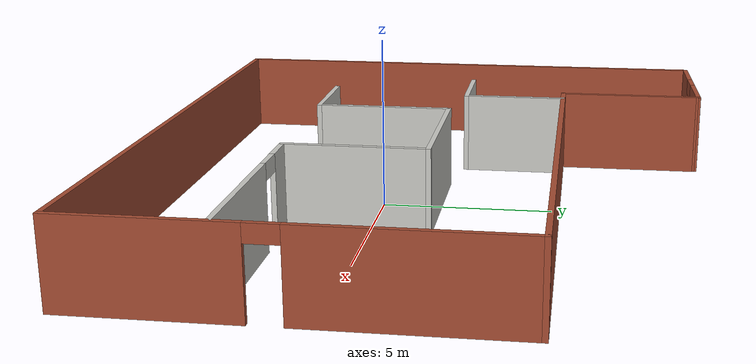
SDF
<?xml version='1.0'?>
<sdf version='1.7'>
  <model name='wall.world'>
    <pose>-0.078578 1.53896 0 0 -0 0</pose>
    <link name='Wall_10'>
      <collision name='Wall_10_Collision'>
        <geometry>
          <box>
            <size>16 0.15 2.5</size>
          </box>
        </geometry>
        <pose>0 0 1.25 0 -0 0</pose>
      </collision>
      <visual name='Wall_10_Visual'>
        <pose>0 0 1.25 0 -0 0</pose>
        <geometry>
          <box>
            <size>16 0.15 2.5</size>
          </box>
        </geometry>
        <material>
          <script>
            <uri>file://media/materials/scripts/gazebo.material</uri>
            <name>Gazebo/Bricks</name>
          </script>
          <ambient>1 1 1 1</ambient>
        </material>
        <meta>
          <layer>0</layer>
        </meta>
      </visual>
      <pose>-8.92413 -0.050871 0 0 -0 -1.5708</pose>
    </link>
    <link name='Wall_11'>
      <collision name='Wall_11_Collision'>
        <geometry>
          <box>
            <size>18 0.15 2.5</size>
          </box>
        </geometry>
        <pose>0 0 1.25 0 -0 0</pose>
      </collision>
      <visual name='Wall_11_Visual'>
        <pose>0 0 1.25 0 -0 0</pose>
        <geometry>
          <box>
            <size>18 0.15 2.5</size>
          </box>
        </geometry>
        <material>
          <script>
            <uri>file://media/materials/scripts/gazebo.material</uri>
            <name>Gazebo/Bricks</name>
          </script>
          <ambient>1 1 1 1</ambient>
        </material>
        <meta>
          <layer>0</layer>
        </meta>
      </visual>
      <pose>0.000872 -7.97587 0 0 -0 0</pose>
    </link>
    <link name='Wall_12'>
      <pose>8.92587 -2.17587 0 0 -0 1.5708</pose>
      <visual name='Wall_12_Visual_0'>
        <pose>-3.44262 0 1.25 0 -0 0</pose>
        <geometry>
          <box>
            <size>4.86476 0.15 2.5</size>
          </box>
        </geometry>
        <material>
          <script>
            <uri>file://media/materials/scripts/gazebo.material</uri>
            <name>Gazebo/Bricks</name>
          </script>
          <ambient>1 1 1 1</ambient>
        </material>
        <meta>
          <layer>0</layer>
        </meta>
      </visual>
      <collision name='Wall_12_Collision_0'>
        <geometry>
          <box>
            <size>4.86476 0.15 2.5</size>
          </box>
        </geometry>
        <pose>-3.44262 0 1.25 0 -0 0</pose>
      </collision>
      <visual name='Wall_12_Visual_1'>
        <pose>2.88238 0 1.25 0 -0 0</pose>
        <geometry>
          <box>
            <size>5.98524 0.15 2.5</size>
          </box>
        </geometry>
        <material>
          <script>
            <uri>file://media/materials/scripts/gazebo.material</uri>
            <name>Gazebo/Bricks</name>
          </script>
          <ambient>1 1 1 1</ambient>
        </material>
        <meta>
          <layer>0</layer>
        </meta>
      </visual>
      <collision name='Wall_12_Collision_1'>
        <geometry>
          <box>
            <size>5.98524 0.15 2.5</size>
          </box>
        </geometry>
        <pose>2.88238 0 1.25 0 -0 0</pose>
      </collision>
      <visual name='Wall_12_Visual_2'>
        <pose>-0.560238 0 2.25 0 -0 0</pose>
        <geometry>
          <box>
            <size>0.9 0.15 0.5</size>
          </box>
        </geometry>
        <material>
          <script>
            <uri>file://media/materials/scripts/gazebo.material</uri>
            <name>Gazebo/Bricks</name>
          </script>
          <ambient>1 1 1 1</ambient>
        </material>
        <meta>
          <layer>0</layer>
        </meta>
      </visual>
      <collision name='Wall_12_Collision_2'>
        <geometry>
          <box>
            <size>0.9 0.15 0.5</size>
          </box>
        </geometry>
        <pose>-0.560238 0 2.25 0 -0 0</pose>
      </collision>
    </link>
    <link name='Wall_13'>
      <collision name='Wall_13_Collision'>
        <geometry>
          <box>
            <size>13.75 0.15 2.5</size>
          </box>
        </geometry>
        <pose>0 0 1.25 0 -0 0</pose>
      </collision>
      <visual name='Wall_13_Visual'>
        <pose>0 0 1.25 0 -0 0</pose>
        <geometry>
          <box>
            <size>13.75 0.15 2.5</size>
          </box>
        </geometry>
        <material>
          <script>
            <uri>file://media/materials/scripts/gazebo.material</uri>
            <name>Gazebo/Bricks</name>
          </script>
          <ambient>1 1 1 1</ambient>
        </material>
        <meta>
          <layer>0</layer>
        </meta>
      </visual>
      <pose>2.12587 3.62413 0 0 -0 3.14159</pose>
    </link>
    <link name='Wall_14'>
      <collision name='Wall_14_Collision'>
        <geometry>
          <box>
            <size>4.5 0.15 2.5</size>
          </box>
        </geometry>
        <pose>0 0 1.25 0 -0 0</pose>
      </collision>
      <visual name='Wall_14_Visual'>
        <pose>0 0 1.25 0 -0 0</pose>
        <geometry>
          <box>
            <size>4.5 0.15 2.5</size>
          </box>
        </geometry>
        <material>
          <script>
            <uri>file://media/materials/scripts/gazebo.material</uri>
            <name>Gazebo/Bricks</name>
          </script>
          <ambient>1 1 1 1</ambient>
        </material>
        <meta>
          <layer>0</layer>
        </meta>
      </visual>
      <pose>-4.67413 5.79913 0 0 -0 1.5708</pose>
    </link>
    <link name='Wall_15'>
      <pose>-6.79913 7.92413 0 0 -0 -3.11807</pose>
      <visual name='Wall_15_Visual_0'>
        <pose>-1.2683 0 1.25 0 -0 0</pose>
        <geometry>
          <box>
            <size>1.86458 0.15 2.5</size>
          </box>
        </geometry>
        <material>
          <script>
            <uri>file://media/materials/scripts/gazebo.material</uri>
            <name>Gazebo/Bricks</name>
          </script>
          <ambient>1 1 1 1</ambient>
        </material>
        <meta>
          <layer>0</layer>
        </meta>
      </visual>
      <collision name='Wall_15_Collision_0'>
        <geometry>
          <box>
            <size>1.86458 0.15 2.5</size>
          </box>
        </geometry>
        <pose>-1.2683 0 1.25 0 -0 0</pose>
      </collision>
      <visual name='Wall_15_Visual_1'>
        <pose>1.38229 0 1.25 0 -0 0</pose>
        <geometry>
          <box>
            <size>1.6366 0.15 2.5</size>
          </box>
        </geometry>
        <material>
          <script>
            <uri>file://media/materials/scripts/gazebo.material</uri>
            <name>Gazebo/Bricks</name>
          </script>
          <ambient>1 1 1 1</ambient>
        </material>
        <meta>
          <layer>0</layer>
        </meta>
      </visual>
      <collision name='Wall_15_Collision_1'>
        <geometry>
          <box>
            <size>1.6366 0.15 2.5</size>
          </box>
        </geometry>
        <pose>1.38229 0 1.25 0 -0 0</pose>
      </collision>
      <visual name='Wall_15_Visual_2'>
        <pose>0.113991 0 2.25 0 -0 0</pose>
        <geometry>
          <box>
            <size>0.9 0.15 0.5</size>
          </box>
        </geometry>
        <material>
          <script>
            <uri>file://media/materials/scripts/gazebo.material</uri>
            <name>Gazebo/Bricks</name>
          </script>
          <ambient>1 1 1 1</ambient>
        </material>
        <meta>
          <layer>0</layer>
        </meta>
      </visual>
      <collision name='Wall_15_Collision_2'>
        <geometry>
          <box>
            <size>0.9 0.15 0.5</size>
          </box>
        </geometry>
        <pose>0.113991 0 2.25 0 -0 0</pose>
      </collision>
    </link>
    <link name='Wall_17'>
      <pose>5.66481 -3.96667 0 0 -0 3.14159</pose>
      <visual name='Wall_17_Visual_0'>
        <pose>-1.00715 0 1.25 0 -0 0</pose>
        <geometry>
          <box>
            <size>4.4857 0.15 2.5</size>
          </box>
        </geometry>
        <material>
          <script>
            <uri>file://media/materials/scripts/gazebo.material</uri>
            <name>Gazebo/CeilingTiled</name>
          </script>
          <ambient>1 1 1 1</ambient>
        </material>
        <meta>
          <layer>0</layer>
        </meta>
      </visual>
      <collision name='Wall_17_Collision_0'>
        <geometry>
          <box>
            <size>4.4857 0.15 2.5</size>
          </box>
        </geometry>
        <pose>-1.00715 0 1.25 0 -0 0</pose>
      </collision>
      <visual name='Wall_17_Visual_1'>
        <pose>2.69285 0 1.25 0 -0 0</pose>
        <geometry>
          <box>
            <size>1.1143 0.15 2.5</size>
          </box>
        </geometry>
        <material>
          <script>
            <uri>file://media/materials/scripts/gazebo.material</uri>
            <name>Gazebo/CeilingTiled</name>
          </script>
          <ambient>1 1 1 1</ambient>
        </material>
        <meta>
          <layer>0</layer>
        </meta>
      </visual>
      <collision name='Wall_17_Collision_1'>
        <geometry>
          <box>
            <size>1.1143 0.15 2.5</size>
          </box>
        </geometry>
        <pose>2.69285 0 1.25 0 -0 0</pose>
      </collision>
      <visual name='Wall_17_Visual_2'>
        <pose>1.6857 0 2.25 0 -0 0</pose>
        <geometry>
          <box>
            <size>0.9 0.15 0.5</size>
          </box>
        </geometry>
        <material>
          <script>
            <uri>file://media/materials/scripts/gazebo.material</uri>
            <name>Gazebo/CeilingTiled</name>
          </script>
          <ambient>1 1 1 1</ambient>
        </material>
        <meta>
          <layer>0</layer>
        </meta>
      </visual>
      <collision name='Wall_17_Collision_2'>
        <geometry>
          <box>
            <size>0.9 0.15 0.5</size>
          </box>
        </geometry>
        <pose>1.6857 0 2.25 0 -0 0</pose>
      </collision>
    </link>
    <link name='Wall_18'>
      <collision name='Wall_18_Collision'>
        <geometry>
          <box>
            <size>4.25 0.15 2.5</size>
          </box>
        </geometry>
        <pose>0 0 1.25 0 -0 0</pose>
      </collision>
      <visual name='Wall_18_Visual'>
        <pose>0 0 1.25 0 -0 0</pose>
        <geometry>
          <box>
            <size>4.25 0.15 2.5</size>
          </box>
        </geometry>
        <material>
          <script>
            <uri>file://media/materials/scripts/gazebo.material</uri>
            <name>Gazebo/CeilingTiled</name>
          </script>
          <ambient>1 1 1 1</ambient>
        </material>
        <meta>
          <layer>0</layer>
        </meta>
      </visual>
      <pose>2.48981 -1.91667 0 0 -0 1.5708</pose>
    </link>
    <link name='Wall_19'>
      <collision name='Wall_19_Collision'>
        <geometry>
          <box>
            <size>4.75 0.15 2.5</size>
          </box>
        </geometry>
        <pose>0 0 1.25 0 -0 0</pose>
      </collision>
      <visual name='Wall_19_Visual'>
        <pose>0 0 1.25 0 -0 0</pose>
        <geometry>
          <box>
            <size>4.75 0.15 2.5</size>
          </box>
        </geometry>
        <material>
          <script>
            <uri>file://media/materials/scripts/gazebo.material</uri>
            <name>Gazebo/CeilingTiled</name>
          </script>
          <ambient>1 1 1 1</ambient>
        </material>
        <meta>
          <layer>0</layer>
        </meta>
      </visual>
      <pose>0.189808 0.133334 0 0 -0 3.14159</pose>
    </link>
    <link name='Wall_20'>
      <collision name='Wall_20_Collision'>
        <geometry>
          <box>
            <size>4.25 0.15 2.5</size>
          </box>
        </geometry>
        <pose>0 0 1.25 0 -0 0</pose>
      </collision>
      <visual name='Wall_20_Visual'>
        <pose>0 0 1.25 0 -0 0</pose>
        <geometry>
          <box>
            <size>4.25 0.15 2.5</size>
          </box>
        </geometry>
        <material>
          <script>
            <uri>file://media/materials/scripts/gazebo.material</uri>
            <name>Gazebo/CeilingTiled</name>
          </script>
          <ambient>1 1 1 1</ambient>
        </material>
        <meta>
          <layer>0</layer>
        </meta>
      </visual>
      <pose>-2.11019 -1.91667 0 0 -0 -1.5708</pose>
    </link>
    <link name='Wall_21'>
      <collision name='Wall_21_Collision'>
        <geometry>
          <box>
            <size>2.75 0.15 2.5</size>
          </box>
        </geometry>
        <pose>0 0 1.25 0 -0 0</pose>
      </collision>
      <visual name='Wall_21_Visual'>
        <pose>0 0 1.25 0 -0 0</pose>
        <geometry>
          <box>
            <size>2.75 0.15 2.5</size>
          </box>
        </geometry>
        <material>
          <script>
            <uri>file://media/materials/scripts/gazebo.material</uri>
            <name>Gazebo/CeilingTiled</name>
          </script>
          <ambient>1 1 1 1</ambient>
        </material>
        <meta>
          <layer>0</layer>
        </meta>
      </visual>
      <pose>-3.41019 -3.96667 0 0 -0 3.14159</pose>
    </link>
    <link name='Wall_23'>
      <collision name='Wall_23_Collision'>
        <geometry>
          <box>
            <size>3.25 0.15 2.5</size>
          </box>
        </geometry>
        <pose>0 0 1.25 0 -0 0</pose>
      </collision>
      <visual name='Wall_23_Visual'>
        <pose>0 0 1.25 0 -0 0</pose>
        <geometry>
          <box>
            <size>3.25 0.15 2.5</size>
          </box>
        </geometry>
        <material>
          <script>
            <uri>file://media/materials/scripts/gazebo.material</uri>
            <name>Gazebo/CeilingTiled</name>
          </script>
          <ambient>1 1 1 1</ambient>
        </material>
        <meta>
          <layer>0</layer>
        </meta>
      </visual>
      <pose>-3.95799 2.05126 0 0 -0 -1.5708</pose>
    </link>
    <link name='Wall_24'>
      <collision name='Wall_24_Collision'>
        <geometry>
          <box>
            <size>2.5 0.15 2.5</size>
          </box>
        </geometry>
        <pose>0 0 1.25 0 -0 0</pose>
      </collision>
      <visual name='Wall_24_Visual'>
        <pose>0 0 1.25 0 -0 0</pose>
        <geometry>
          <box>
            <size>2.5 0.15 2.5</size>
          </box>
        </geometry>
        <material>
          <script>
            <uri>file://media/materials/scripts/gazebo.material</uri>
            <name>Gazebo/CeilingTiled</name>
          </script>
          <ambient>1 1 1 1</ambient>
        </material>
        <meta>
          <layer>0</layer>
        </meta>
      </visual>
      <pose>-5.13299 0.501262 0 0 -0 3.14159</pose>
    </link>
    <static>1</static>
  </model>
</sdf>
